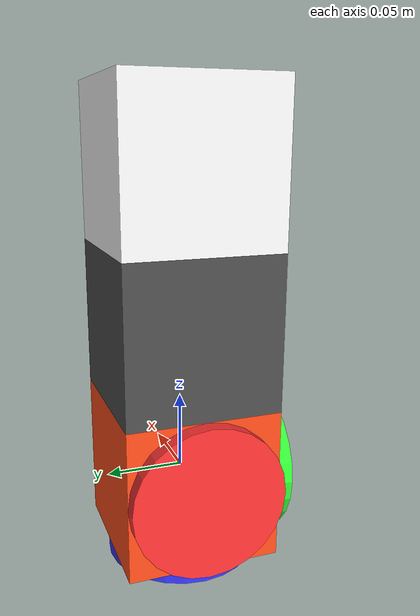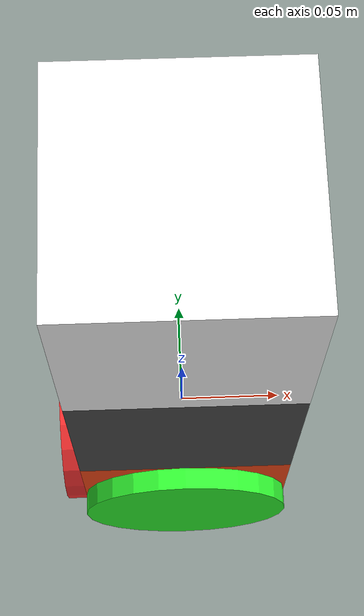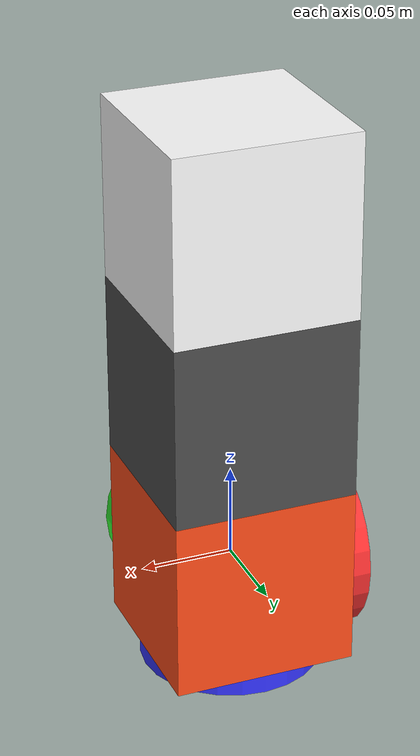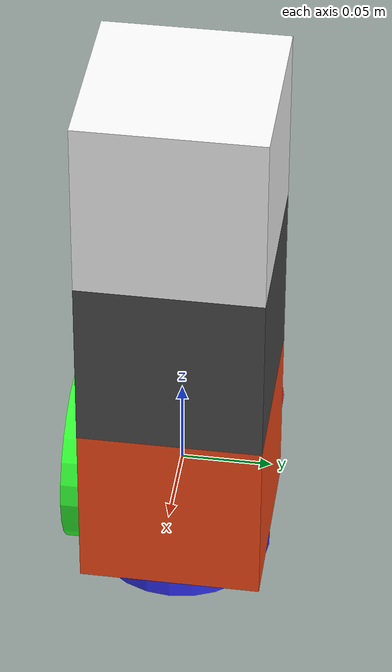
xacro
<?xml version="1.1"?>
<robot xmlns:xacro="http://www.ros.org/wiki/xacro"  name="cubesat">
    <xacro:include filename="example_include.xacro" />
    <xacro:include filename="example_gazebo.xacro" />

    <link name="world"></link>

    <joint name="ADCS_joint" type="floating">
    	<origin xyz="0 0 0" rpy="0 0 0"/>
    	<parent link="world"/>
    	<child link="ADCS_link"/>
    </joint>

    <!-- - THIS WILL BE PLACED ON THE _INCLUDE FILE AS PROPERTIES -->

    <link name="ADCS_link">
        <visual>
            <origin xyz="0 0 0" rpy="0 0 0"/>
            <geometry>
                <box size="${U_aresta} ${U_aresta} ${U_aresta}" />
            </geometry>
	 <material name="orange"/>
        </visual>
        <collision>
            <origin xyz="0 0 0" rpy="0 0 0"/>
            <geometry>
                <box size="${U_aresta} ${U_aresta} ${U_aresta}" />
            </geometry>
        </collision>
        <inertial>
            <origin xyz="0 0 0" rpy="0 0 0"/>
            <mass value="${U_massa}" />
            <inertia ixx="${(1/12) * U_massa * (U_aresta*U_aresta+U_aresta*U_aresta)}" ixy="0.0" ixz="0.0"
                    iyy="${(1/12) * U_massa * (U_aresta*U_aresta+U_aresta*U_aresta)}" iyz="0.0"
                    izz="${(1/12) * U_massa * (U_aresta*U_aresta+U_aresta*U_aresta)}" />
        </inertial>
    </link>

	<joint name="RDR3_joint" type="continuous">
		<origin xyz="0 0 0" rpy="0 0 0"/>
		<parent link="ADCS_link"/>
		<child link="RDR3_link"/>
		<axis xyz ="0 0 1" rpy = "0 0 0"/>
		<limit effort="10000" velocity="10000"/>
		<joint_properties damping ="0.0" friction="0.0"/>
	</joint>

    <link name="RDR3_link">
        <visual>
            <origin xyz="0 0 -${(U_aresta+RDR_length)/2}" rpy="0 0 0"/>
		<geometry>
			<cylinder radius="${RDR_radius}" length="${RDR_length}"/>
		</geometry>
	 <material name="blue"/>
        </visual>
        <collision>
            <origin xyz="0 0 -${(U_aresta+RDR_length)/2}" rpy="0 0 0"/>
		<geometry>
			<cylinder radius="${RDR_radius}" length="${RDR_length}"/>
		</geometry>
        </collision>
        <inertial>
            <origin xyz="0 0 -${(U_aresta+RDR_length)/2}" rpy="0 0 0"/>
            <mass value="${RDR_mass}" />
            <inertia ixx="${(1/12) * RDR_mass * (3*RDR_radius*RDR_radius + RDR_length*RDR_length)}" ixy="0.0" ixz="0.0"
                    iyy="${(1/12) * RDR_mass * (3*RDR_radius*RDR_radius + RDR_length*RDR_length)}" iyz="0.0"
                    izz="${(1/2) * RDR_mass * (RDR_radius*RDR_radius)}" />
        </inertial>
    </link>

	<joint name="RDR2_joint" type="continuous">
		<origin xyz="0 0 0" rpy="0 0 0"/>
		<parent link="ADCS_link"/>
		<child link="RDR2_link"/>
		<axis xyz ="1 0 0" rpy = "0 0 0"/>
		<limit effort="10000" velocity="10000"/>
		<joint_properties damping ="0.0" friction="0.0"/>
	</joint>

    <link name="RDR2_link">
        <visual>
            <origin xyz="-${(U_aresta+RDR_length)/2} 0 0" rpy="0 ${pi/2} 0"/>
		<geometry>
			<cylinder radius="${RDR_radius}" length="${RDR_length}"/>
		</geometry>
	 <material name="red"/>
        </visual>
        <collision>
            <origin xyz="-${(U_aresta+RDR_length)/2} 0 0" rpy="0 ${pi/2} 0"/>
		<geometry>
			<cylinder radius="${RDR_radius}" length="${RDR_length}"/>
		</geometry>
        </collision>
        <inertial>
            <origin xyz="-${(U_aresta+RDR_length)/2} 0 0" rpy="0 ${pi/2} 0"/>
            <mass value="${RDR_mass}" />
            <inertia iyy="${(1/12) * RDR_mass * (3*RDR_radius*RDR_radius + RDR_length*RDR_length)}" ixy="0.0" ixz="0.0"
                    izz="${(1/12) * RDR_mass * (3*RDR_radius*RDR_radius + RDR_length*RDR_length)}" iyz="0.0"
                    ixx="${(1/2) * RDR_mass * (RDR_radius*RDR_radius)}" />
        </inertial>
    </link>

	<joint name="RDR1_joint" type="continuous">
		<origin xyz="0 0 0" rpy="0 0 0"/>
		<parent link="ADCS_link"/>
		<child link="RDR1_link"/>
		<axis xyz ="0 1 0" rpy = "0 0 0"/>
		<limit effort="10000" velocity="10000"/>
		<joint_properties damping ="0.0" friction="0.0"/>
	</joint>

    <link name="RDR1_link">
        <visual>
            <origin xyz="0 -${(U_aresta+RDR_length)/2} 0" rpy="${pi/2} 0 0"/>
		<geometry>
			<cylinder radius="${RDR_radius}" length="${RDR_length}"/>
		</geometry>
	 <material name="green"/>
        </visual>
        <collision>
            <origin xyz="0 -${(U_aresta+RDR_length)/2} 0" rpy="${pi/2} 0 0"/>
		<geometry>
			<cylinder radius="${RDR_radius}" length="${RDR_length}"/>
		</geometry>
        </collision>
        <inertial>
            <origin xyz="0 -${(U_aresta+RDR_length)/2} 0" rpy="${pi/2} 0 0"/>
            <mass value="${RDR_mass}" />
            <inertia izz="${(1/12) * RDR_mass * (3*RDR_radius*RDR_radius + RDR_length*RDR_length)}" ixy="0.0" ixz="0.0"
                    ixx="${(1/12) * RDR_mass * (3*RDR_radius*RDR_radius + RDR_length*RDR_length)}" iyz="0.0"
                    iyy="${(1/2) * RDR_mass * (RDR_radius*RDR_radius)}" />
        </inertial>
    </link>

    <!-- slider_joint lets slider_link move back and forth along the top of the base in one dimension.  -->
    <!-- - Origin is set to one of the top edges of the base_link box, so that our link skims across the top  -->
    <!-- - It moves along the X axis -->
    <!-- - We need to specify limits for the motion -->
    <joint name="2U_joint" type="fixed">
        <origin xyz="0 0 ${U_aresta/2} " rpy="0 0 0"/>
        <parent link="ADCS_link"/>
        <child link="2U_link"/>
    </joint>

    <!-- slider_link is the box skimming across the top of the base. Its parameters are similar to the base_link, however: -->
    <!-- - Instead of explicitly describing a colour, it uses the named material "blue". It knows about "blue" that material was included in example_include.xacro. -->
    <!-- - Instead of explicitly describing the inertia, we use a macro that was defined in the example_include.xacro -->

    <link name="2U_link">
        <visual>
            <origin xyz="0 0 ${U_aresta/2}" rpy="0 0 0"/>
            <geometry>
                <box size="${U_aresta} ${U_aresta} ${U_aresta}" />
            </geometry>
		<material name="gray"/>
        </visual>
        <collision>
            <origin xyz="0 0 ${U_aresta/2}" rpy="0 0 0"/>
            <geometry>
                <box size="${U_aresta} ${U_aresta} ${U_aresta}" />
            </geometry>
        </collision>
        <inertial>
            <origin xyz="0 0 ${U_aresta/2}" rpy="0 0 0"/>
            <mass value="${U_massa}" />
            <inertia ixx="${(1/12) * U_massa * (U_aresta*U_aresta+U_aresta*U_aresta)}" ixy="0.0" ixz="0.0"
                    iyy="${(1/12) * U_massa * (U_aresta*U_aresta+U_aresta*U_aresta)}" iyz="0.0"
                    izz="${(1/12) * U_massa * (U_aresta*U_aresta+U_aresta*U_aresta)}" />
        </inertial>
    </link>

    <!-- arm_joint describes the rotation of the arm and is centred around the top corner of the slider box. -->
    <!-- - The axis of rotation is -1 in Y, so that positive is "up" -->
    <!-- - The upper limit uses xacro's mathematical features -->
    <joint name="camera_joint" type="fixed">
        <origin xyz="0 0 ${(U_aresta+U_aresta/2)}" rpy="0 0 0"/>
        <parent link="2U_link"/>
        <child link="camera_link"/>
    </joint>

    <link name="camera_link">
        <visual>
            <origin xyz="0 0 0" rpy="0 0 0"/>
            <geometry>
                <box size="${U_aresta} ${U_aresta} ${U_aresta}" />
            </geometry>
		<material name="white"/>
        </visual>
        <collision>
            <origin xyz="0 0 0" rpy="0 0 0"/>
            <geometry>
                <box size="${U_aresta} ${U_aresta} ${U_aresta}" />
            </geometry>
        </collision>
        <inertial>
            <origin xyz="0 0 0" rpy="0 0 0"/>
            <mass value="1" />
            <inertia ixx="${(1/12) * U_massa * (U_aresta*U_aresta+U_aresta*U_aresta)}" ixy="0.0" ixz="0.0"
                    iyy="${(1/12) * U_massa * (U_aresta*U_aresta+U_aresta*U_aresta)}" iyz="0.0"
                    izz="${(1/12) * U_massa * (U_aresta*U_aresta+U_aresta*U_aresta)}" />
        </inertial>
    </link>

</robot>

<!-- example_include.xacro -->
<robot xmlns:xacro="http://www.ros.org/wiki/xacro" >

    <!-- This file is not a robot in and of itself, it just contains some useful tags that could be included in any robot -->

    <!-- Specify some colours -->

    <material name="white">
        <color rgba="1 1 1 1"/>
    </material>

    <material name="gray">
        <color rgba="0.3 0.3 0.3 1"/>
    </material>

    <material name="orange">
        <color rgba="1 0.3 0.1 1"/>
    </material>

    <material name="blue">
        <color rgba="0.2 0.2 1 1"/>
    </material>

    <material name="green">
        <color rgba="0.2 1 0.2 1"/>
    </material>

    <material name="red">
        <color rgba="1 0.2 0.2 1"/>
    </material>

    <!-- - THIS WILL BE PLACED ON THE _INCLUDE FILE AS PROPERTIES -->
    <xacro:property name="U_aresta" value="0.1" />
    <xacro:property name="U_massa" value="1" />
    <xacro:property name="RDR_radius" value="0.05" />
    <xacro:property name="RDR_length" value="0.01" />
    <xacro:property name="RDR_mass" value="0.137" />

    <!-- Specify some standard inertial calculations https://en.wikipedia.org/wiki/List_of_moments_of_inertia -->
    <!-- These make use of xacro's mathematical functionality -->

    <xacro:macro name="inertial_sphere" params="mass radius *origin">
        <inertial>
            <xacro:insert_block name="origin"/>
            <mass value="${mass}" />
            <inertia ixx="${(2/5) * mass * (radius*radius)}" ixy="0.0" ixz="0.0"
                    iyy="${(2/5) * mass * (radius*radius)}" iyz="0.0"
                    izz="${(2/5) * mass * (radius*radius)}" />
        </inertial>
    </xacro:macro>

    <xacro:macro name="inertial_box" params="mass x y z *origin">
        <inertial>
            <xacro:insert_block name="origin"/>
            <mass value="${mass}" />
            <inertia ixx="${(1/12) * mass * (y*y+z*z)}" ixy="0.0" ixz="0.0"
                    iyy="${(1/12) * mass * (x*x+z*z)}" iyz="0.0"
                    izz="${(1/12) * mass * (x*x+y*y)}" />
        </inertial>
    </xacro:macro>

    <xacro:macro name="inertial_cylinder" params="mass length radius *origin">
        <inertial>
            <xacro:insert_block name="origin"/>
            <mass value="${mass}" />
            <inertia ixx="${(1/12) * mass * (3*radius*radius + length*length)}" ixy="0.0" ixz="0.0"
                    iyy="${(1/12) * mass * (3*radius*radius + length*length)}" iyz="0.0"
                    izz="${(1/2) * mass * (radius*radius)}" />
        </inertial>
    </xacro:macro>

</robot>

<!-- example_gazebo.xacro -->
<robot xmlns:xacro="http://www.ros.org/wiki/xacro">

    <!-- To include it add the following line -->

    <!-- Instead, we need to add gazebo tags for our links that refer to Gazebo materials -->

    <gazebo reference="2U_link">
        <material>Gazebo/Gray</material>
    </gazebo>

    <gazebo reference="ADCS_link">
        <material>Gazebo/Orange</material>
    </gazebo>

        <gazebo reference="camera_link">
        <material>Gazebo/White</material>
    </gazebo>

     <gazebo reference="RDR3_link">
        <material>Gazebo/Blue</material>
    </gazebo>

     <gazebo reference="RDR2_link">
        <material>Gazebo/Red</material>
    </gazebo>

         <gazebo reference="RDR1_link">
        <material>Gazebo/Green</material>
    </gazebo>

    <!-- Gazebo requires the use of plugins to interact with other systems such as ROS. -->

    <!-- This plugin will publish the joint_states for the selected joints
            (which robot_state_publisher can then use to broadcast the approprate tf). -->

    <gazebo>
        <plugin name="gazebo_ros_joint_state_publisher"
            filename="libgazebo_ros_joint_state_publisher.so">
            <update_rate>20</update_rate>
            <joint_name>ADCS_joint</joint_name>
        </plugin>
    </gazebo>

    <!-- This plugin will read a JointTrajectory message from the /set_joint_trajectory topic
            and move the machine accordingly. It's a bit clunky but it works. -->
    <gazebo>
        <plugin name="gazebo_ros_joint_pose_trajectory"
            filename="libgazebo_ros_joint_pose_trajectory.so">
            <update_rate>2</update_rate>
                <joint_name>ADCS_joint</joint_name>
        </plugin>
    </gazebo>

    <!-- The next section shows an example of adding a sensor, in this case a depth camera. -->

    <!-- First, create the link and joint for the optical frame -->

    <joint name="camera_optical_joint" type="fixed">
        <origin xyz="0 0 0" rpy="-1.571 0 -1.571" />
        <parent link="camera_link" />
        <child link="camera_link_optical" />
    </joint>

    <link name="camera_link_optical"></link>

    <!-- Add a gazebo tag for the ORIGINAL camera_link (but in the plugin we reference the optical frame so that ROS can orient things correctly) -->
    <!-- Note that although visualise is set to true, it won't actually visualise the depth camera in gazebo. To see the preview,
            try swapping "depth" to "camera"-->
    <gazebo reference="camera_link">
        <sensor type="depth" name="my_camera">
            <update_rate>20</update_rate>
            <visualize>true</visualize>
            <camera name="cam">
                <horizontal_fov>1.3962634</horizontal_fov>
                <image>
                    <width>640</width>
                    <height>480</height>
                    <format>R8B8G8</format>
                </image>
                <clip>
                    <near>0.02</near>
                    <far>300</far>
                </clip>
                <noise>
                    <type>gaussian</type>
                    <mean>0.0</mean>
                    <stddev>0.007</stddev>
                </noise>
            </camera>
            <plugin name="camera_controller" filename="libgazebo_ros_camera.so">
                <frame_name>camera_link_optical</frame_name>
                <min_depth>0.1</min_depth>
                <max_depth>500</max_depth>
            </plugin>
        </sensor>
    </gazebo>

    <joint name="imu_joint" type="fixed">
        <origin xyz="0 0 0" rpy="0 0 0" />
        <parent link="2U_link" />
        <child link="imu_link" />
    </joint>

    <link name="imu_link"></link>

  <gazebo reference="2U_link">
    <gravity>true</gravity>
    <sensor name="imu_sensor" type="imu">
      <always_on>true</always_on>
      <update_rate>100</update_rate>
      <visualize>true</visualize>
      <topic>__default_topic__</topic>
      <plugin filename="libgazebo_ros_imu_sensor.so" name="imu_plugin">
        <topicName>imu</topicName>
        <bodyName>imu_link</bodyName>
        <updateRateHZ>10.0</updateRateHZ>
        <gaussianNoise>0.0</gaussianNoise>
        <xyzOffset>0 0 0</xyzOffset>
        <rpyOffset>0 0 0</rpyOffset>
        <frameName>imu_link</frameName>
        <initialOrientationAsReference>false</initialOrientationAsReference>
      </plugin>
      <pose>0 0 0 0 0 0</pose>
    </sensor>
  </gazebo>

</robot>
